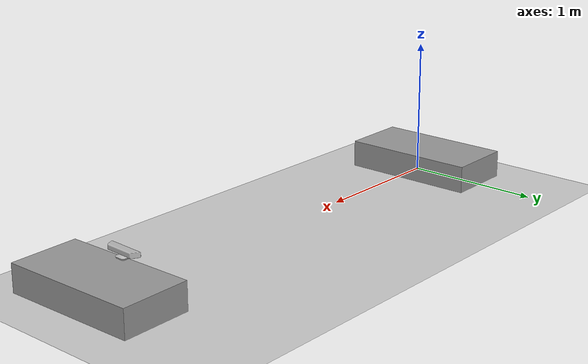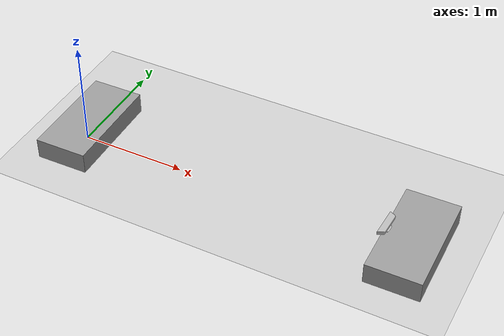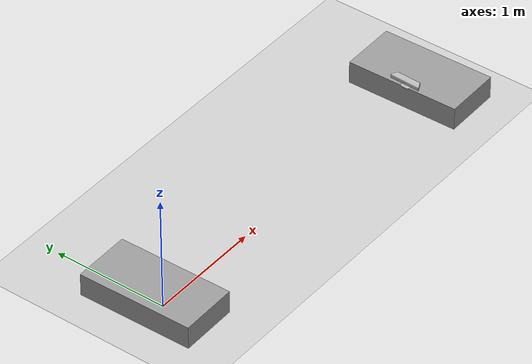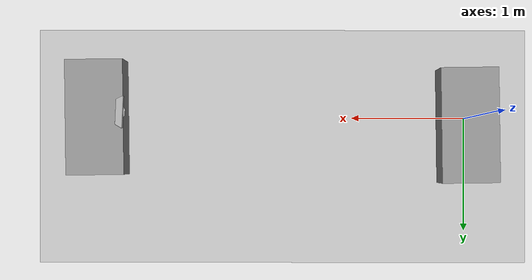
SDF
<sdf version="1.7">
 <world name="default">
  <light name="sun" type="directional">
   <pose>0 0 10 0 -0 0</pose>
   <diffuse>0.8 0.8 0.8 1</diffuse>
   <specular>0.2 0.2 0.2 1</specular>
   <attenuation>
    <range>1000</range>
    <constant>0.9</constant>
    <linear>0.01</linear>
    <quadratic>0.001</quadratic>
   </attenuation>
   <direction>-0.5 0.1 -0.9</direction>
   <spot><inner_angle>0</inner_angle><outer_angle>0</outer_angle><falloff>0</falloff></spot>
  </light>
  <model name="ground_plane">
   <static>1</static>
   <link name="link">
    <collision name="collision">
     <geometry><plane><normal>0 0 1</normal><size>100 100</size></plane></geometry>
     <surface><friction><ode><mu>100</mu><mu2>50</mu2></ode></friction></surface>
    </collision>
    <visual name="visual">
     <cast_shadows>0</cast_shadows>
     <geometry><plane><normal>0 0 1</normal><size>100 100</size></plane></geometry>
     <material>
      <script><uri>file://media/materials/scripts/gazebo.material</uri><name>Gazebo/Grey</name></script>
     </material>
    </visual>
   </link>
  </model>
  <gravity>0 0 -9.8</gravity>
  <magnetic_field>6e-06 2.3e-05 -4.2e-05</magnetic_field>
  <atmosphere type="adiabatic"/>
  <physics type="ode">
   <max_step_size>0.001</max_step_size>
   <real_time_factor>1</real_time_factor>
   <real_time_update_rate>1000</real_time_update_rate>
  </physics>
  <scene><ambient>0.4 0.4 0.4 1</ambient><background>0.7 0.7 0.7 1</background><shadows>1</shadows></scene>
  <audio><device>default</device></audio>
  <spherical_coordinates>
   <surface_model>EARTH_WGS84</surface_model>
   <latitude_deg>0</latitude_deg>
   <longitude_deg>0</longitude_deg>
   <elevation>0</elevation>
   <heading_deg>0</heading_deg>
  </spherical_coordinates>
  <model name="kinect">
   <pose>2.97767 -0.036156 0.250502 0 3e-06 3.10056</pose>
   <link name="link">
    <inertial>
     <mass>0.1</mass>
     <inertia><ixx>1</ixx><ixy>0</ixy><ixz>0</ixz><iyy>1</iyy><iyz>0</iyz><izz>1</izz></inertia>
    </inertial>
    <collision name="collision"><geometry><box><size>0.073 0.276 0.072</size></box></geometry></collision>
    <visual name="visual"><geometry><mesh><uri>model://kinect/meshes/kinect.dae</uri></mesh></geometry></visual>
    <sensor name="camera" type="depth">
     <update_rate>20</update_rate>
     <camera>
      <horizontal_fov>1.0472</horizontal_fov>
      <image><width>640</width><height>480</height><format>R8G8B8</format></image>
      <clip><near>0.05</near><far>3</far></clip>
     </camera>
     <plugin name="camera_plugin" filename="libgazebo_ros_openni_kinect.so">
      <baseline>0.2</baseline>
      <alwaysOn>1</alwaysOn>
      <updateRate>0.0</updateRate>
      <cameraName>camera_ir</cameraName>
      <imageTopicName>/camera/color/image_raw</imageTopicName>
      <cameraInfoTopicName>/camera/color/camera_info</cameraInfoTopicName>
      <depthImageTopicName>/camera/depth/image_raw</depthImageTopicName>
      <depthImageCameraInfoTopicName>/camera/depth/camera_info</depthImageCameraInfoTopicName>
      <pointCloudTopicName>/camera/depth/points</pointCloudTopicName>
      <frameName>camera_link</frameName>
      <pointCloudCutoff>0.5</pointCloudCutoff>
      <pointCloudCutoffMax>3.0</pointCloudCutoffMax>
      <distortionK1>0</distortionK1>
      <distortionK2>0</distortionK2>
      <distortionK3>0</distortionK3>
      <distortionT1>0</distortionT1>
      <distortionT2>0</distortionT2>
      <CxPrime>0</CxPrime>
      <Cx>0</Cx>
      <Cy>0</Cy>
      <focalLength>0</focalLength>
      <hackBaseline>0</hackBaseline>
     </plugin>
    </sensor>
   </link>
  </model>
  <model name="basefor_robot">
   <link name="link_0">
    <inertial>
     <mass>1</mass>
     <inertia>
      <ixx>0.166667</ixx>
      <ixy>0</ixy>
      <ixz>0</ixz>
      <iyy>0.166667</iyy>
      <iyz>0</iyz>
      <izz>0.166667</izz>
     </inertia>
    </inertial>
    <pose>0 0 0 0 0 -1.55646</pose>
    <visual name="visual">
     <geometry><box><size>1 0.5 0.2</size></box></geometry>
     <material>
      <lighting>1</lighting>
      <script><uri>file://media/materials/scripts/gazebo.material</uri><name>Gazebo/Grey</name></script>
      <shader type="pixel"><normal_map>__default__</normal_map></shader>
      <ambient>0.3 0.3 0.3 1</ambient>
      <diffuse>0.7 0.7 0.7 1</diffuse>
      <specular>0.01 0.01 0.01 1</specular>
      <emissive>0 0 0 1</emissive>
     </material>
    </visual>
    <collision name="collision">
     <geometry><box><size>1 1 1</size></box></geometry>
     <surface>
      <friction>
       <ode><mu>1</mu><mu2>1</mu2><fdir1>0 0 0</fdir1><slip1>0</slip1><slip2>0</slip2></ode>
       <torsional>
        <coefficient>1</coefficient>
        <patch_radius>0</patch_radius>
        <surface_radius>0</surface_radius>
        <use_patch_radius>1</use_patch_radius>
        <ode><slip>0</slip></ode>
       </torsional>
      </friction>
      <bounce><restitution_coefficient>0</restitution_coefficient><threshold>1e+06</threshold></bounce>
      <contact>
       <collide_without_contact>0</collide_without_contact>
       <collide_without_contact_bitmask>1</collide_without_contact_bitmask>
       <collide_bitmask>1</collide_bitmask>
       <ode>
        <soft_cfm>0</soft_cfm>
        <soft_erp>0.2</soft_erp>
        <kp>1e+13</kp>
        <kd>1</kd>
        <max_vel>0.01</max_vel>
        <min_depth>0</min_depth>
       </ode>
       <bullet>
        <split_impulse>1</split_impulse>
        <split_impulse_penetration_threshold>-0.01</split_impulse_penetration_threshold>
        <soft_cfm>0</soft_cfm>
        <soft_erp>0.2</soft_erp>
        <kp>1e+13</kp>
        <kd>1</kd>
       </bullet>
      </contact>
     </surface>
    </collision>
   </link>
   <static>0</static>
   <pose>-0.004576 0.067798 0.098157 0 -0 0</pose>
  </model>
  <model name="basefor_robot_clone">
   <link name="link_0">
    <inertial>
     <mass>1</mass>
     <inertia>
      <ixx>0.166667</ixx>
      <ixy>0</ixy>
      <ixz>0</ixz>
      <iyy>0.166667</iyy>
      <iyz>0</iyz>
      <izz>0.166667</izz>
     </inertia>
    </inertial>
    <pose>0 0 0 0 0 -1.55646</pose>
    <visual name="visual">
     <geometry><box><size>1 0.5 0.2</size></box></geometry>
     <material>
      <lighting>1</lighting>
      <script><uri>file://media/materials/scripts/gazebo.material</uri><name>Gazebo/Grey</name></script>
      <shader type="pixel"><normal_map>__default__</normal_map></shader>
      <ambient>0.3 0.3 0.3 1</ambient>
      <diffuse>0.7 0.7 0.7 1</diffuse>
      <specular>0.01 0.01 0.01 1</specular>
      <emissive>0 0 0 1</emissive>
     </material>
    </visual>
    <collision name="collision">
     <geometry><box><size>1 1 1</size></box></geometry>
     <surface>
      <friction>
       <ode><mu>1</mu><mu2>1</mu2><fdir1>0 0 0</fdir1><slip1>0</slip1><slip2>0</slip2></ode>
       <torsional>
        <coefficient>1</coefficient>
        <patch_radius>0</patch_radius>
        <surface_radius>0</surface_radius>
        <use_patch_radius>1</use_patch_radius>
        <ode><slip>0</slip></ode>
       </torsional>
      </friction>
      <bounce><restitution_coefficient>0</restitution_coefficient><threshold>1e+06</threshold></bounce>
      <contact>
       <collide_without_contact>0</collide_without_contact>
       <collide_without_contact_bitmask>1</collide_without_contact_bitmask>
       <collide_bitmask>1</collide_bitmask>
       <ode>
        <soft_cfm>0</soft_cfm>
        <soft_erp>0.2</soft_erp>
        <kp>1e+13</kp>
        <kd>1</kd>
        <max_vel>0.01</max_vel>
        <min_depth>0</min_depth>
       </ode>
       <bullet>
        <split_impulse>1</split_impulse>
        <split_impulse_penetration_threshold>-0.01</split_impulse_penetration_threshold>
        <soft_cfm>0</soft_cfm>
        <soft_erp>0.2</soft_erp>
        <kp>1e+13</kp>
        <kd>1</kd>
       </bullet>
      </contact>
     </surface>
    </collision>
   </link>
   <static>0</static>
   <pose>3.24161 0.001076 0.098157 0 -0 0</pose>
  </model>
 </world>
</sdf>
